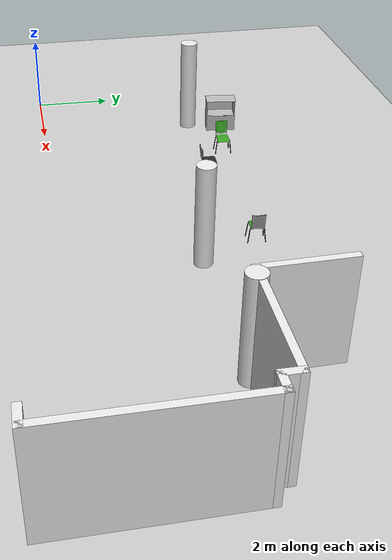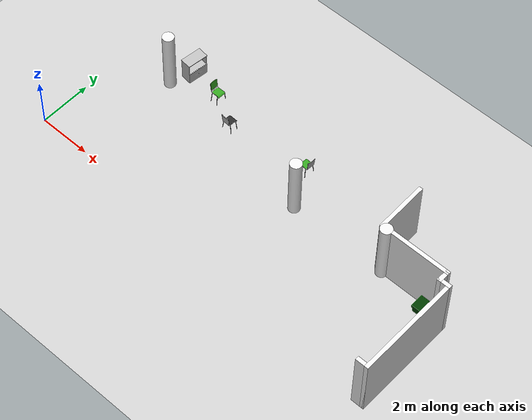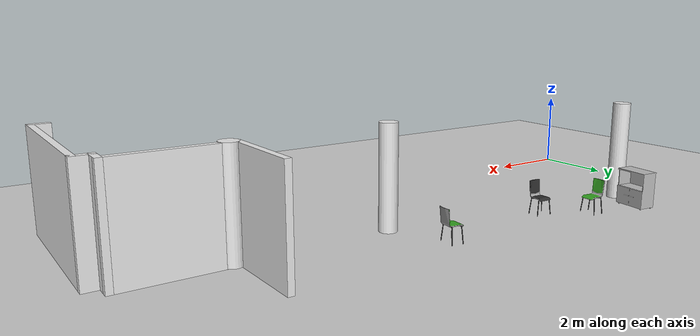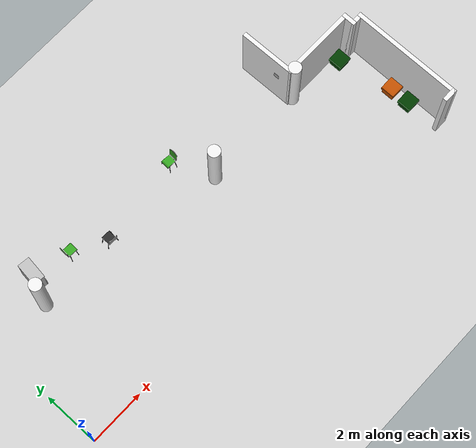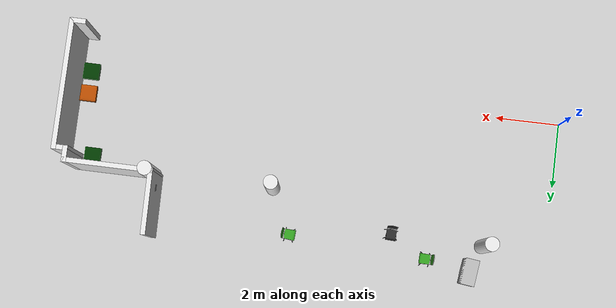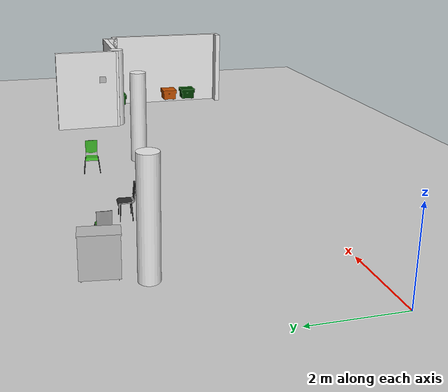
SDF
<sdf version="1.6">
 <world name="default">
  <model name="ground_plane">
   <static>1</static>
   <link name="link">
    <collision name="collision">
     <geometry><plane><normal>0 0 1</normal><size>100 100</size></plane></geometry>
     <surface><friction><ode><mu>100</mu><mu2>50</mu2></ode></friction></surface>
    </collision>
    <visual name="visual">
     <cast_shadows>0</cast_shadows>
     <geometry><plane><normal>0 0 1</normal><size>100 100</size></plane></geometry>
     <material>
      <script><uri>file://media/materials/scripts/gazebo.material</uri><name>Gazebo/Grey</name></script>
     </material>
    </visual>
   </link>
  </model>
  <model name="ucu_basic_frame.world">
   <link name="Wall_299">
    <pose>14.3599 -4.65041 0 0 -0 0</pose>
    <visual name="Wall_299_Visual">
     <pose>0 0 1.25 0 -0 0</pose>
     <geometry><box><size>0.5 0.15 2.5</size></box></geometry>
     <material>
      <script><uri>file://media/materials/scripts/gazebo.material</uri><name>Gazebo/White</name></script>
      <ambient>1 1 1 1</ambient>
      <diffuse>1 1 1 1</diffuse>
      <specular>0 0 0 1</specular>
      <emissive>0 0 0 1</emissive>
     </material>
     <meta><layer>0</layer></meta>
    </visual>
    <collision name="Wall_299_Collision">
     <pose>0 0 1.25 0 -0 0</pose>
     <geometry><box><size>0.5 0.15 2.5</size></box></geometry>
     <surface>
      <friction>
       <ode><mu>1</mu><mu2>1</mu2><fdir1>0 0 0</fdir1><slip1>0</slip1><slip2>0</slip2></ode>
       <torsional>
        <coefficient>1</coefficient>
        <patch_radius>0</patch_radius>
        <surface_radius>0</surface_radius>
        <use_patch_radius>1</use_patch_radius>
        <ode><slip>0</slip></ode>
       </torsional>
      </friction>
      <bounce><restitution_coefficient>0</restitution_coefficient><threshold>1e+06</threshold></bounce>
      <contact>
       <collide_without_contact>0</collide_without_contact>
       <collide_without_contact_bitmask>1</collide_without_contact_bitmask>
       <collide_bitmask>1</collide_bitmask>
       <ode>
        <soft_cfm>0</soft_cfm>
        <soft_erp>0.2</soft_erp>
        <kp>1e+13</kp>
        <kd>1</kd>
        <max_vel>0.01</max_vel>
        <min_depth>0</min_depth>
       </ode>
       <bullet>
        <split_impulse>1</split_impulse>
        <split_impulse_penetration_threshold>-0.01</split_impulse_penetration_threshold>
        <soft_cfm>0</soft_cfm>
        <soft_erp>0.2</soft_erp>
        <kp>1e+13</kp>
        <kd>1</kd>
       </bullet>
      </contact>
     </surface>
    </collision>
   </link>
   <link name="Wall_302">
    <pose>14.5349 -2.72541 0 0 -0 1.5708</pose>
    <visual name="Wall_302_Visual">
     <pose>0 0 1.25 0 -0 0</pose>
     <geometry><box><size>4 0.15 2.5</size></box></geometry>
     <material>
      <script><uri>file://media/materials/scripts/gazebo.material</uri><name>Gazebo/White</name></script>
      <ambient>1 1 1 1</ambient>
      <diffuse>1 1 1 1</diffuse>
      <specular>0 0 0 1</specular>
      <emissive>0 0 0 1</emissive>
     </material>
     <meta><layer>0</layer></meta>
    </visual>
    <collision name="Wall_302_Collision">
     <pose>0 0 1.25 0 -0 0</pose>
     <geometry><box><size>4 0.15 2.5</size></box></geometry>
     <surface>
      <friction>
       <ode><mu>1</mu><mu2>1</mu2><fdir1>0 0 0</fdir1><slip1>0</slip1><slip2>0</slip2></ode>
       <torsional>
        <coefficient>1</coefficient>
        <patch_radius>0</patch_radius>
        <surface_radius>0</surface_radius>
        <use_patch_radius>1</use_patch_radius>
        <ode><slip>0</slip></ode>
       </torsional>
      </friction>
      <bounce><restitution_coefficient>0</restitution_coefficient><threshold>1e+06</threshold></bounce>
      <contact>
       <collide_without_contact>0</collide_without_contact>
       <collide_without_contact_bitmask>1</collide_without_contact_bitmask>
       <collide_bitmask>1</collide_bitmask>
       <ode>
        <soft_cfm>0</soft_cfm>
        <soft_erp>0.2</soft_erp>
        <kp>1e+13</kp>
        <kd>1</kd>
        <max_vel>0.01</max_vel>
        <min_depth>0</min_depth>
       </ode>
       <bullet>
        <split_impulse>1</split_impulse>
        <split_impulse_penetration_threshold>-0.01</split_impulse_penetration_threshold>
        <soft_cfm>0</soft_cfm>
        <soft_erp>0.2</soft_erp>
        <kp>1e+13</kp>
        <kd>1</kd>
       </bullet>
      </contact>
     </surface>
    </collision>
   </link>
   <link name="Wall_303">
    <pose>14.3599 -0.800407 0 0 -0 3.14159</pose>
    <visual name="Wall_303_Visual">
     <pose>0 0 1.25 0 -0 0</pose>
     <geometry><box><size>0.5 0.15 2.5</size></box></geometry>
     <material>
      <script><uri>file://media/materials/scripts/gazebo.material</uri><name>Gazebo/White</name></script>
      <ambient>1 1 1 1</ambient>
      <diffuse>1 1 1 1</diffuse>
      <specular>0 0 0 1</specular>
      <emissive>0 0 0 1</emissive>
     </material>
     <meta><layer>0</layer></meta>
    </visual>
    <collision name="Wall_303_Collision">
     <pose>0 0 1.25 0 -0 0</pose>
     <geometry><box><size>0.5 0.15 2.5</size></box></geometry>
     <surface>
      <friction>
       <ode><mu>1</mu><mu2>1</mu2><fdir1>0 0 0</fdir1><slip1>0</slip1><slip2>0</slip2></ode>
       <torsional>
        <coefficient>1</coefficient>
        <patch_radius>0</patch_radius>
        <surface_radius>0</surface_radius>
        <use_patch_radius>1</use_patch_radius>
        <ode><slip>0</slip></ode>
       </torsional>
      </friction>
      <bounce><restitution_coefficient>0</restitution_coefficient><threshold>1e+06</threshold></bounce>
      <contact>
       <collide_without_contact>0</collide_without_contact>
       <collide_without_contact_bitmask>1</collide_without_contact_bitmask>
       <collide_bitmask>1</collide_bitmask>
       <ode>
        <soft_cfm>0</soft_cfm>
        <soft_erp>0.2</soft_erp>
        <kp>1e+13</kp>
        <kd>1</kd>
        <max_vel>0.01</max_vel>
        <min_depth>0</min_depth>
       </ode>
       <bullet>
        <split_impulse>1</split_impulse>
        <split_impulse_penetration_threshold>-0.01</split_impulse_penetration_threshold>
        <soft_cfm>0</soft_cfm>
        <soft_erp>0.2</soft_erp>
        <kp>1e+13</kp>
        <kd>1</kd>
       </bullet>
      </contact>
     </surface>
    </collision>
   </link>
   <link name="Wall_305">
    <pose>14.1849 -0.625407 0 0 -0 1.5708</pose>
    <visual name="Wall_305_Visual">
     <pose>0 0 1.25 0 -0 0</pose>
     <geometry><box><size>0.5 0.15 2.5</size></box></geometry>
     <material>
      <script><uri>file://media/materials/scripts/gazebo.material</uri><name>Gazebo/White</name></script>
      <ambient>1 1 1 1</ambient>
      <diffuse>1 1 1 1</diffuse>
      <specular>0 0 0 1</specular>
      <emissive>0 0 0 1</emissive>
     </material>
     <meta><layer>0</layer></meta>
    </visual>
    <collision name="Wall_305_Collision">
     <pose>0 0 1.25 0 -0 0</pose>
     <geometry><box><size>0.5 0.15 2.5</size></box></geometry>
     <surface>
      <friction>
       <ode><mu>1</mu><mu2>1</mu2><fdir1>0 0 0</fdir1><slip1>0</slip1><slip2>0</slip2></ode>
       <torsional>
        <coefficient>1</coefficient>
        <patch_radius>0</patch_radius>
        <surface_radius>0</surface_radius>
        <use_patch_radius>1</use_patch_radius>
        <ode><slip>0</slip></ode>
       </torsional>
      </friction>
      <bounce><restitution_coefficient>0</restitution_coefficient><threshold>1e+06</threshold></bounce>
      <contact>
       <collide_without_contact>0</collide_without_contact>
       <collide_without_contact_bitmask>1</collide_without_contact_bitmask>
       <collide_bitmask>1</collide_bitmask>
       <ode>
        <soft_cfm>0</soft_cfm>
        <soft_erp>0.2</soft_erp>
        <kp>1e+13</kp>
        <kd>1</kd>
        <max_vel>0.01</max_vel>
        <min_depth>0</min_depth>
       </ode>
       <bullet>
        <split_impulse>1</split_impulse>
        <split_impulse_penetration_threshold>-0.01</split_impulse_penetration_threshold>
        <soft_cfm>0</soft_cfm>
        <soft_erp>0.2</soft_erp>
        <kp>1e+13</kp>
        <kd>1</kd>
       </bullet>
      </contact>
     </surface>
    </collision>
   </link>
   <link name="Wall_306">
    <pose>12.8849 -0.450407 0 0 -0 3.14159</pose>
    <visual name="Wall_306_Visual">
     <pose>0 0 1.25 0 -0 0</pose>
     <geometry><box><size>2.75 0.15 2.5</size></box></geometry>
     <material>
      <script><uri>file://media/materials/scripts/gazebo.material</uri><name>Gazebo/White</name></script>
      <ambient>1 1 1 1</ambient>
      <diffuse>1 1 1 1</diffuse>
      <specular>0 0 0 1</specular>
      <emissive>0 0 0 1</emissive>
     </material>
     <meta><layer>0</layer></meta>
    </visual>
    <collision name="Wall_306_Collision">
     <pose>0 0 1.25 0 -0 0</pose>
     <geometry><box><size>2.75 0.15 2.5</size></box></geometry>
     <surface>
      <friction>
       <ode><mu>1</mu><mu2>1</mu2><fdir1>0 0 0</fdir1><slip1>0</slip1><slip2>0</slip2></ode>
       <torsional>
        <coefficient>1</coefficient>
        <patch_radius>0</patch_radius>
        <surface_radius>0</surface_radius>
        <use_patch_radius>1</use_patch_radius>
        <ode><slip>0</slip></ode>
       </torsional>
      </friction>
      <bounce><restitution_coefficient>0</restitution_coefficient><threshold>1e+06</threshold></bounce>
      <contact>
       <collide_without_contact>0</collide_without_contact>
       <collide_without_contact_bitmask>1</collide_without_contact_bitmask>
       <collide_bitmask>1</collide_bitmask>
       <ode>
        <soft_cfm>0</soft_cfm>
        <soft_erp>0.2</soft_erp>
        <kp>1e+13</kp>
        <kd>1</kd>
        <max_vel>0.01</max_vel>
        <min_depth>0</min_depth>
       </ode>
       <bullet>
        <split_impulse>1</split_impulse>
        <split_impulse_penetration_threshold>-0.01</split_impulse_penetration_threshold>
        <soft_cfm>0</soft_cfm>
        <soft_erp>0.2</soft_erp>
        <kp>1e+13</kp>
        <kd>1</kd>
       </bullet>
      </contact>
     </surface>
    </collision>
   </link>
   <link name="Wall_308">
    <pose>11.5681 0.474593 0 0 -0 1.589</pose>
    <visual name="Wall_308_Visual">
     <pose>0 0 1.25 0 -0 0</pose>
     <geometry><box><size>2.00031 0.15 2.5</size></box></geometry>
     <material>
      <script><uri>file://media/materials/scripts/gazebo.material</uri><name>Gazebo/White</name></script>
      <ambient>1 1 1 1</ambient>
      <diffuse>1 1 1 1</diffuse>
      <specular>0 0 0 1</specular>
      <emissive>0 0 0 1</emissive>
     </material>
     <meta><layer>0</layer></meta>
    </visual>
    <collision name="Wall_308_Collision">
     <pose>0 0 1.25 0 -0 0</pose>
     <geometry><box><size>2.00031 0.15 2.5</size></box></geometry>
     <surface>
      <friction>
       <ode><mu>1</mu><mu2>1</mu2><fdir1>0 0 0</fdir1><slip1>0</slip1><slip2>0</slip2></ode>
       <torsional>
        <coefficient>1</coefficient>
        <patch_radius>0</patch_radius>
        <surface_radius>0</surface_radius>
        <use_patch_radius>1</use_patch_radius>
        <ode><slip>0</slip></ode>
       </torsional>
      </friction>
      <bounce><restitution_coefficient>0</restitution_coefficient><threshold>1e+06</threshold></bounce>
      <contact>
       <collide_without_contact>0</collide_without_contact>
       <collide_without_contact_bitmask>1</collide_without_contact_bitmask>
       <collide_bitmask>1</collide_bitmask>
       <ode>
        <soft_cfm>0</soft_cfm>
        <soft_erp>0.2</soft_erp>
        <kp>1e+13</kp>
        <kd>1</kd>
        <max_vel>0.01</max_vel>
        <min_depth>0</min_depth>
       </ode>
       <bullet>
        <split_impulse>1</split_impulse>
        <split_impulse_penetration_threshold>-0.01</split_impulse_penetration_threshold>
        <soft_cfm>0</soft_cfm>
        <soft_erp>0.2</soft_erp>
        <kp>1e+13</kp>
        <kd>1</kd>
       </bullet>
      </contact>
     </surface>
    </collision>
   </link>
   <link name="link_0_clone">
    <pose>1.27753 0.492834 1.26135 0 -0 0</pose>
    <inertial>
     <mass>1</mass>
     <inertia><ixx>0.145833</ixx><ixy>0</ixy><ixz>0</ixz><iyy>0.145833</iyy><iyz>0</iyz><izz>0.125</izz></inertia>
     <pose>0 0 1.25 0 -0 0</pose>
    </inertial>
    <visual name="visual">
     <geometry><cylinder><radius>0.22</radius><length>2.5</length></cylinder></geometry>
     <material>
      <lighting>1</lighting>
      <script><uri>file://media/materials/scripts/gazebo.material</uri><name>Gazebo/White</name></script>
      <ambient>1 1 1 1</ambient>
      <diffuse>1 1 1 1</diffuse>
      <specular>0 0 0 1</specular>
      <emissive>0 0 0 1</emissive>
      <shader type="vertex"><normal_map>__default__</normal_map></shader>
     </material>
    </visual>
    <collision name="collision">
     <geometry><cylinder><radius>0.22</radius><length>2.5</length></cylinder></geometry>
     <surface>
      <friction>
       <ode><mu>1</mu><mu2>1</mu2><fdir1>0 0 0</fdir1><slip1>0</slip1><slip2>0</slip2></ode>
       <torsional>
        <coefficient>1</coefficient>
        <patch_radius>0</patch_radius>
        <surface_radius>0</surface_radius>
        <use_patch_radius>1</use_patch_radius>
        <ode><slip>0</slip></ode>
       </torsional>
      </friction>
      <bounce><restitution_coefficient>0</restitution_coefficient><threshold>1e+06</threshold></bounce>
      <contact>
       <collide_without_contact>0</collide_without_contact>
       <collide_without_contact_bitmask>1</collide_without_contact_bitmask>
       <collide_bitmask>1</collide_bitmask>
       <ode>
        <soft_cfm>0</soft_cfm>
        <soft_erp>0.2</soft_erp>
        <kp>1e+13</kp>
        <kd>1</kd>
        <max_vel>0.01</max_vel>
        <min_depth>0</min_depth>
       </ode>
       <bullet>
        <split_impulse>1</split_impulse>
        <split_impulse_penetration_threshold>-0.01</split_impulse_penetration_threshold>
        <soft_cfm>0</soft_cfm>
        <soft_erp>0.2</soft_erp>
        <kp>1e+13</kp>
        <kd>1</kd>
       </bullet>
      </contact>
     </surface>
    </collision>
   </link>
   <link name="link_0_clone_0">
    <pose>7.99694 -0.529806 1.26135 0 -0 0</pose>
    <inertial>
     <mass>1</mass>
     <inertia><ixx>0.145833</ixx><ixy>0</ixy><ixz>0</ixz><iyy>0.145833</iyy><iyz>0</iyz><izz>0.125</izz></inertia>
     <pose>0 0 1.25 0 -0 0</pose>
    </inertial>
    <visual name="visual">
     <geometry><cylinder><radius>0.22</radius><length>2.5</length></cylinder></geometry>
     <material>
      <lighting>1</lighting>
      <script><uri>file://media/materials/scripts/gazebo.material</uri><name>Gazebo/White</name></script>
      <ambient>1 1 1 1</ambient>
      <diffuse>1 1 1 1</diffuse>
      <specular>0 0 0 1</specular>
      <emissive>0 0 0 1</emissive>
      <shader type="vertex"><normal_map>__default__</normal_map></shader>
     </material>
    </visual>
    <collision name="collision">
     <geometry><cylinder><radius>0.22</radius><length>2.5</length></cylinder></geometry>
     <surface>
      <friction>
       <ode><mu>1</mu><mu2>1</mu2><fdir1>0 0 0</fdir1><slip1>0</slip1><slip2>0</slip2></ode>
       <torsional>
        <coefficient>1</coefficient>
        <patch_radius>0</patch_radius>
        <surface_radius>0</surface_radius>
        <use_patch_radius>1</use_patch_radius>
        <ode><slip>0</slip></ode>
       </torsional>
      </friction>
      <bounce><restitution_coefficient>0</restitution_coefficient><threshold>1e+06</threshold></bounce>
      <contact>
       <collide_without_contact>0</collide_without_contact>
       <collide_without_contact_bitmask>1</collide_without_contact_bitmask>
       <collide_bitmask>1</collide_bitmask>
       <ode>
        <soft_cfm>0</soft_cfm>
        <soft_erp>0.2</soft_erp>
        <kp>1e+13</kp>
        <kd>1</kd>
        <max_vel>0.01</max_vel>
        <min_depth>0</min_depth>
       </ode>
       <bullet>
        <split_impulse>1</split_impulse>
        <split_impulse_penetration_threshold>-0.01</split_impulse_penetration_threshold>
        <soft_cfm>0</soft_cfm>
        <soft_erp>0.2</soft_erp>
        <kp>1e+13</kp>
        <kd>1</kd>
       </bullet>
      </contact>
     </surface>
    </collision>
   </link>
   <link name="link_0_clone_1">
    <pose>11.7676 -0.493633 1.26135 0 -0 0</pose>
    <inertial>
     <mass>1</mass>
     <inertia><ixx>0.145833</ixx><ixy>0</ixy><ixz>0</ixz><iyy>0.145833</iyy><iyz>0</iyz><izz>0.125</izz></inertia>
     <pose>0 0 1.25 0 -0 0</pose>
    </inertial>
    <visual name="visual">
     <geometry><cylinder><radius>0.22</radius><length>2.5</length></cylinder></geometry>
     <material>
      <lighting>1</lighting>
      <script><uri>file://media/materials/scripts/gazebo.material</uri><name>Gazebo/White</name></script>
      <ambient>1 1 1 1</ambient>
      <diffuse>1 1 1 1</diffuse>
      <specular>0 0 0 1</specular>
      <emissive>0 0 0 1</emissive>
      <shader type="vertex"><normal_map>__default__</normal_map></shader>
     </material>
    </visual>
    <collision name="collision">
     <geometry><cylinder><radius>0.22</radius><length>2.5</length></cylinder></geometry>
     <surface>
      <friction>
       <ode><mu>1</mu><mu2>1</mu2><fdir1>0 0 0</fdir1><slip1>0</slip1><slip2>0</slip2></ode>
       <torsional>
        <coefficient>1</coefficient>
        <patch_radius>0</patch_radius>
        <surface_radius>0</surface_radius>
        <use_patch_radius>1</use_patch_radius>
        <ode><slip>0</slip></ode>
       </torsional>
      </friction>
      <bounce><restitution_coefficient>0</restitution_coefficient><threshold>1e+06</threshold></bounce>
      <contact>
       <collide_without_contact>0</collide_without_contact>
       <collide_without_contact_bitmask>1</collide_without_contact_bitmask>
       <collide_bitmask>1</collide_bitmask>
       <ode>
        <soft_cfm>0</soft_cfm>
        <soft_erp>0.2</soft_erp>
        <kp>1e+13</kp>
        <kd>1</kd>
        <max_vel>0.01</max_vel>
        <min_depth>0</min_depth>
       </ode>
       <bullet>
        <split_impulse>1</split_impulse>
        <split_impulse_penetration_threshold>-0.01</split_impulse_penetration_threshold>
        <soft_cfm>0</soft_cfm>
        <soft_erp>0.2</soft_erp>
        <kp>1e+13</kp>
        <kd>1</kd>
       </bullet>
      </contact>
     </surface>
    </collision>
   </link>
   <static>1</static>
   <pose>0.7577 3.6363 0 0 -0 0</pose>
  </model>
  <include>
   <uri>model://robert_gazebo/models/locker_008</uri>
   <name>locker_015</name>
   <pose>2.39 4.99 0.45 0 0 1.45</pose>
  </include>
  <include>
   <uri>model://robert_gazebo/models/classroom_chair_green</uri>
   <name>classroom_chair_015_1_1</name>
   <pose>3.75 4.74 0.445 0 0 1.54</pose>
  </include>
  <include>
   <uri>model://robert_gazebo/models/classroom_chair_grey</uri>
   <name>classroom_chair_015_1_4</name>
   <pose>4.9049 4.08896 0.445362 -5e-06 -0.000123 3.09516</pose>
  </include>
  <include>
   <uri>model://robert_gazebo/models/classroom_chair_green</uri>
   <name>classroom_chair_015_2_3</name>
   <pose>8.08 4.5 0.445 0 0 -1.65</pose>
  </include>
  <include>
   <uri>model://robert_gazebo/models/soft_armchair/green</uri>
   <name>soft_armchair_green_1</name>
   <pose>14.48 2.81 0.38 0 0 3.14</pose>
  </include>
  <include>
   <uri>model://robert_gazebo/models/soft_armchair/green</uri>
   <name>soft_armchair_green_2</name>
   <pose>14.88 0.17 0.38 0 0 1.57</pose>
  </include>
  <include>
   <uri>model://robert_gazebo/models/soft_armchair/orange</uri>
   <name>soft_armchair_orange_1</name>
   <pose>14.88 0.87 0.38 0 0 1.57</pose>
  </include>
  <include>
   <uri>model://robert_gazebo/models/qr/it-space_1</uri>
   <name>qr_it-space_1</name>
   <pose>12.23 3.64 1.6 0 0 -1.57</pose>
  </include>
 </world>
</sdf>
